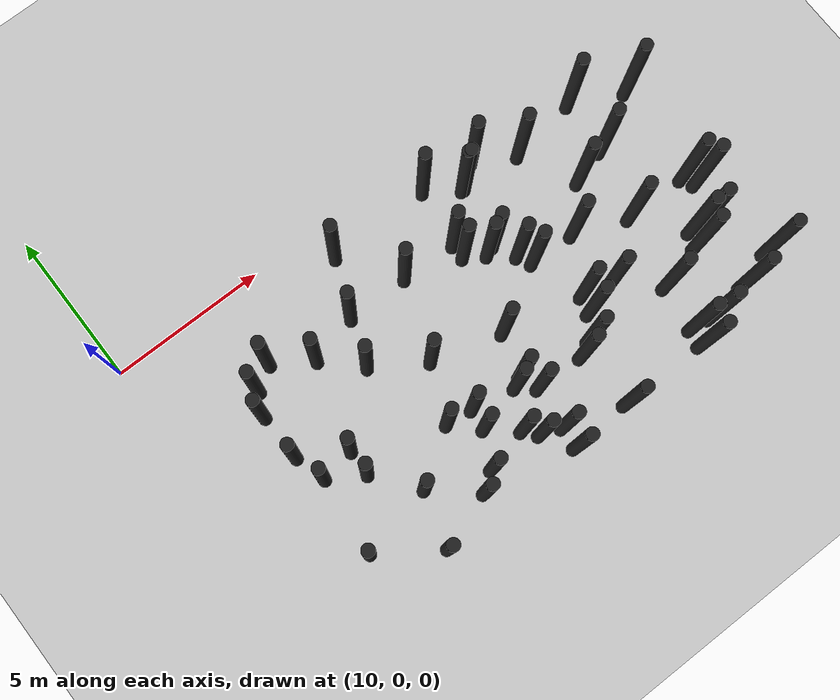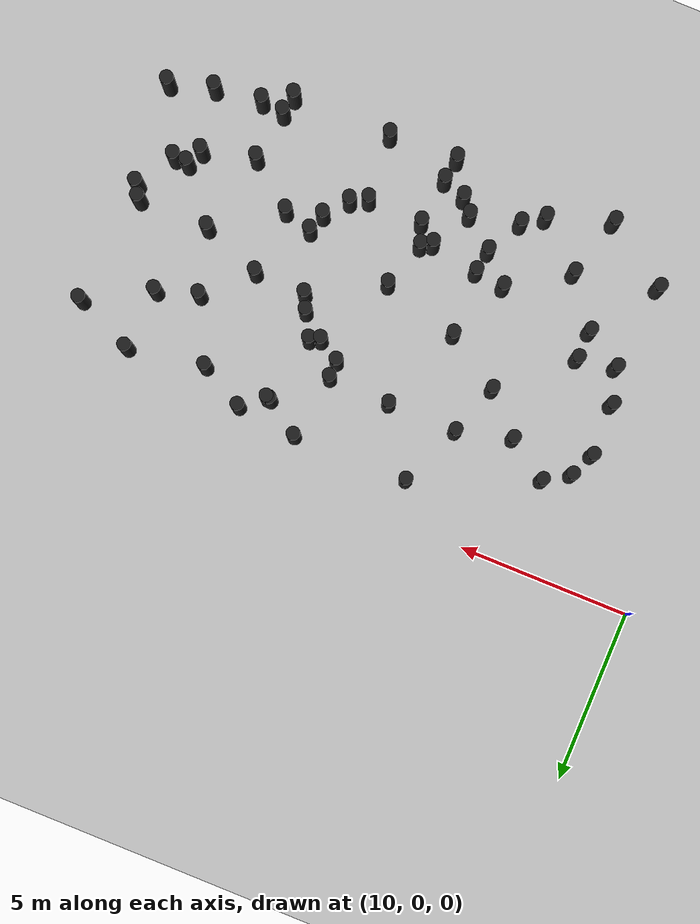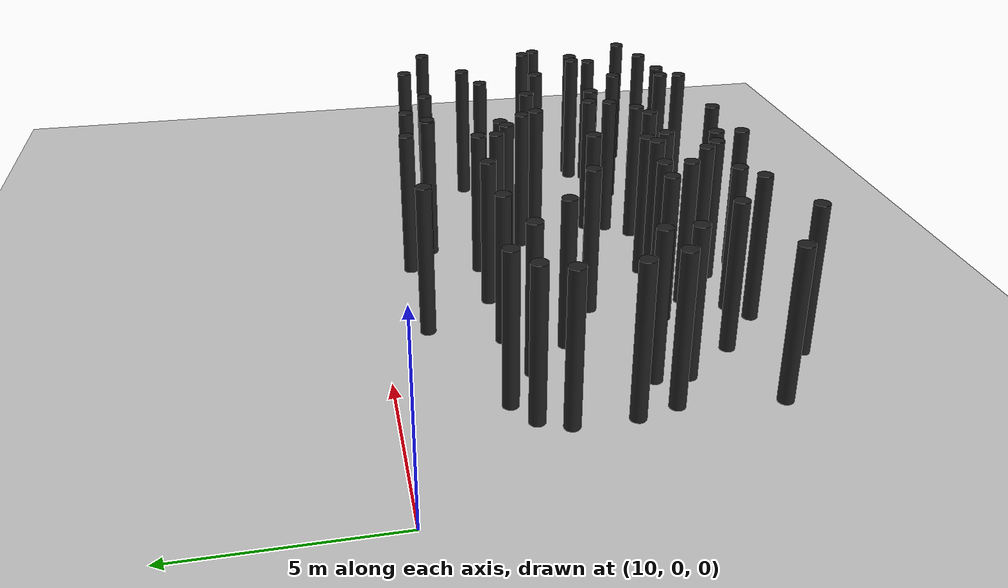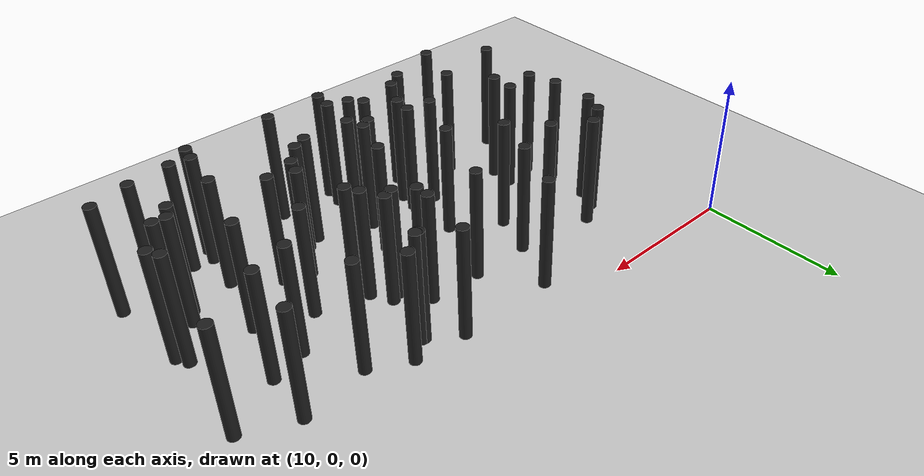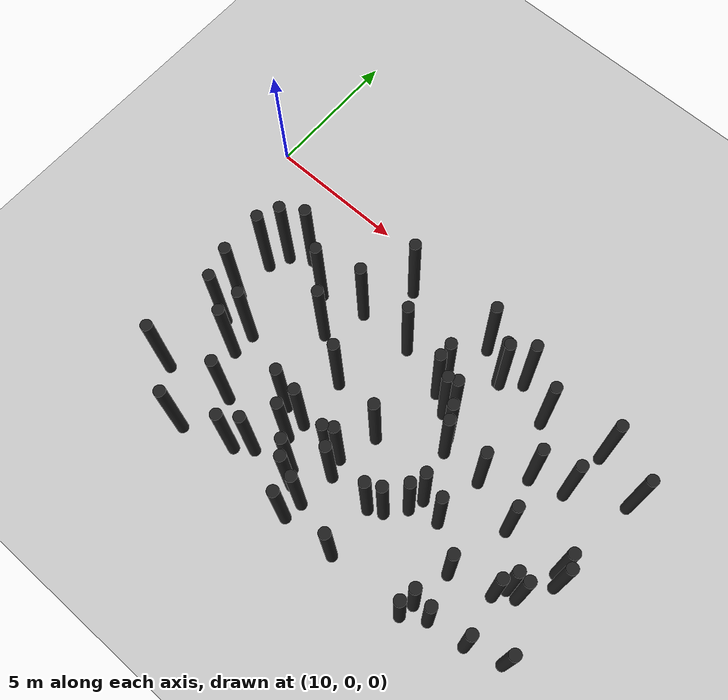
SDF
<sdf version="1.7">
 <world name="default">
  <model name="ground_plane">
   <static>1</static>
   <link name="link">
    <collision name="collision">
     <geometry><plane><normal>0 0 1</normal><size>200 200</size></plane></geometry>
     <surface><friction><ode><mu>100</mu><mu2>50</mu2></ode></friction></surface>
    </collision>
    <visual name="visual">
     <cast_shadows>0</cast_shadows>
     <geometry><plane><normal>0 0 1</normal><size>200 200</size></plane></geometry>
     <material>
      <script><uri>file://media/materials/scripts/gazebo.material</uri><name>Gazebo/Grey</name></script>
     </material>
    </visual>
   </link>
  </model>
  <model name="forest_clone_17_0">
   <pose>18.3084 -8.63581 0.00226 0 -0 0</pose>
   <static>1</static>
   <link name="cylinder::link">
    <inertial>
     <mass>1</mass>
     <inertia><ixx>0.083</ixx><ixy>0</ixy><ixz>0</ixz><iyy>0.083</iyy><iyz>0</iyz><izz>0.083</izz></inertia>
    </inertial>
    <collision name="collision">
     <geometry><cylinder><radius>0.2</radius><length>4</length></cylinder></geometry>
    </collision>
    <visual name="visual">
     <geometry><cylinder><radius>0.2</radius><length>4</length></cylinder></geometry>
     <material>
      <script><uri>file://media/materials/scripts/gazebo.material</uri><name>Gazebo/Black</name></script>
     </material>
    </visual>
    <pose>0 0 2 0 -0 0</pose>
   </link>
  </model>
  <model name="forest_clone_20_0">
   <pose>17.5492 -7.24611 0.00177 0 -0 0</pose>
   <static>1</static>
   <link name="cylinder::link">
    <inertial>
     <mass>1</mass>
     <inertia><ixx>0.083</ixx><ixy>0</ixy><ixz>0</ixz><iyy>0.083</iyy><iyz>0</iyz><izz>0.083</izz></inertia>
    </inertial>
    <collision name="collision">
     <geometry><cylinder><radius>0.2</radius><length>4</length></cylinder></geometry>
    </collision>
    <visual name="visual">
     <geometry><cylinder><radius>0.2</radius><length>4</length></cylinder></geometry>
     <material>
      <script><uri>file://media/materials/scripts/gazebo.material</uri><name>Gazebo/Black</name></script>
     </material>
    </visual>
    <pose>0 0 2 0 -0 0</pose>
   </link>
  </model>
  <model name="forest_clone_25_0">
   <pose>21.1492 -3.74001 -0.00472 0 -0 0</pose>
   <static>1</static>
   <link name="cylinder::link">
    <inertial>
     <mass>1</mass>
     <inertia><ixx>0.083</ixx><ixy>0</ixy><ixz>0</ixz><iyy>0.083</iyy><iyz>0</iyz><izz>0.083</izz></inertia>
    </inertial>
    <collision name="collision">
     <geometry><cylinder><radius>0.2</radius><length>4</length></cylinder></geometry>
    </collision>
    <visual name="visual">
     <geometry><cylinder><radius>0.2</radius><length>4</length></cylinder></geometry>
     <material>
      <script><uri>file://media/materials/scripts/gazebo.material</uri><name>Gazebo/Black</name></script>
     </material>
    </visual>
    <pose>0 0 2 0 -0 0</pose>
   </link>
  </model>
  <model name="forest_clone_57_0">
   <pose>24.2118 -9.33026 0.00323 0 -0 0</pose>
   <static>1</static>
   <link name="cylinder::link">
    <inertial>
     <mass>1</mass>
     <inertia><ixx>0.083</ixx><ixy>0</ixy><ixz>0</ixz><iyy>0.083</iyy><iyz>0</iyz><izz>0.083</izz></inertia>
    </inertial>
    <collision name="collision">
     <geometry><cylinder><radius>0.2</radius><length>4</length></cylinder></geometry>
    </collision>
    <visual name="visual">
     <geometry><cylinder><radius>0.2</radius><length>4</length></cylinder></geometry>
     <material>
      <script><uri>file://media/materials/scripts/gazebo.material</uri><name>Gazebo/Black</name></script>
     </material>
    </visual>
    <pose>0 0 2 0 -0 0</pose>
   </link>
  </model>
  <model name="forest_clone_60_0">
   <pose>15.0051 -8.24559 0.00264 0 -0 0</pose>
   <static>1</static>
   <link name="cylinder::link">
    <inertial>
     <mass>1</mass>
     <inertia><ixx>0.083</ixx><ixy>0</ixy><ixz>0</ixz><iyy>0.083</iyy><iyz>0</iyz><izz>0.083</izz></inertia>
    </inertial>
    <collision name="collision">
     <geometry><cylinder><radius>0.2</radius><length>4</length></cylinder></geometry>
    </collision>
    <visual name="visual">
     <geometry><cylinder><radius>0.2</radius><length>4</length></cylinder></geometry>
     <material>
      <script><uri>file://media/materials/scripts/gazebo.material</uri><name>Gazebo/Black</name></script>
     </material>
    </visual>
    <pose>0 0 2 0 -0 0</pose>
   </link>
  </model>
  <model name="forest_clone_64_0">
   <pose>16.3155 -9.3791 -0.00148 0 -0 0</pose>
   <static>1</static>
   <link name="cylinder::link">
    <inertial>
     <mass>1</mass>
     <inertia><ixx>0.083</ixx><ixy>0</ixy><ixz>0</ixz><iyy>0.083</iyy><iyz>0</iyz><izz>0.083</izz></inertia>
    </inertial>
    <collision name="collision">
     <geometry><cylinder><radius>0.2</radius><length>4</length></cylinder></geometry>
    </collision>
    <visual name="visual">
     <geometry><cylinder><radius>0.2</radius><length>4</length></cylinder></geometry>
     <material>
      <script><uri>file://media/materials/scripts/gazebo.material</uri><name>Gazebo/Black</name></script>
     </material>
    </visual>
    <pose>0 0 2 0 -0 0</pose>
   </link>
  </model>
  <model name="forest_clone_70_0">
   <pose>21.746 -4.87308 0.00203 0 -0 0</pose>
   <static>1</static>
   <link name="cylinder::link">
    <inertial>
     <mass>1</mass>
     <inertia><ixx>0.083</ixx><ixy>0</ixy><ixz>0</ixz><iyy>0.083</iyy><iyz>0</iyz><izz>0.083</izz></inertia>
    </inertial>
    <collision name="collision">
     <geometry><cylinder><radius>0.2</radius><length>4</length></cylinder></geometry>
    </collision>
    <visual name="visual">
     <geometry><cylinder><radius>0.2</radius><length>4</length></cylinder></geometry>
     <material>
      <script><uri>file://media/materials/scripts/gazebo.material</uri><name>Gazebo/Black</name></script>
     </material>
    </visual>
    <pose>0 0 2 0 -0 0</pose>
   </link>
  </model>
  <model name="forest_clone_74_0">
   <pose>12.9432 -3.00263 -0.00263 0 -0 0</pose>
   <static>1</static>
   <link name="cylinder::link">
    <inertial>
     <mass>1</mass>
     <inertia><ixx>0.083</ixx><ixy>0</ixy><ixz>0</ixz><iyy>0.083</iyy><iyz>0</iyz><izz>0.083</izz></inertia>
    </inertial>
    <collision name="collision">
     <geometry><cylinder><radius>0.2</radius><length>4</length></cylinder></geometry>
    </collision>
    <visual name="visual">
     <geometry><cylinder><radius>0.2</radius><length>4</length></cylinder></geometry>
     <material>
      <script><uri>file://media/materials/scripts/gazebo.material</uri><name>Gazebo/Black</name></script>
     </material>
    </visual>
    <pose>0 0 2 0 -0 0</pose>
   </link>
  </model>
  <model name="forest_clone_86_0">
   <pose>24.4508 -3.74192 -0.00188 0 -0 0</pose>
   <static>1</static>
   <link name="cylinder::link">
    <inertial>
     <mass>1</mass>
     <inertia><ixx>0.083</ixx><ixy>0</ixy><ixz>0</ixz><iyy>0.083</iyy><iyz>0</iyz><izz>0.083</izz></inertia>
    </inertial>
    <collision name="collision">
     <geometry><cylinder><radius>0.2</radius><length>4</length></cylinder></geometry>
    </collision>
    <visual name="visual">
     <geometry><cylinder><radius>0.2</radius><length>4</length></cylinder></geometry>
     <material>
      <script><uri>file://media/materials/scripts/gazebo.material</uri><name>Gazebo/Black</name></script>
     </material>
    </visual>
    <pose>0 0 2 0 -0 0</pose>
   </link>
  </model>
  <model name="forest_clone_87_0">
   <pose>18.6544 -9.04217 0.00056 0 -0 0</pose>
   <static>1</static>
   <link name="cylinder::link">
    <inertial>
     <mass>1</mass>
     <inertia><ixx>0.083</ixx><ixy>0</ixy><ixz>0</ixz><iyy>0.083</iyy><iyz>0</iyz><izz>0.083</izz></inertia>
    </inertial>
    <collision name="collision">
     <geometry><cylinder><radius>0.2</radius><length>4</length></cylinder></geometry>
    </collision>
    <visual name="visual">
     <geometry><cylinder><radius>0.2</radius><length>4</length></cylinder></geometry>
     <material>
      <script><uri>file://media/materials/scripts/gazebo.material</uri><name>Gazebo/Black</name></script>
     </material>
    </visual>
    <pose>0 0 2 0 -0 0</pose>
   </link>
  </model>
  <model name="forest_clone_90_0">
   <pose>19.3207 -9.28563 -0.00075 0 -0 0</pose>
   <static>1</static>
   <link name="cylinder::link">
    <inertial>
     <mass>1</mass>
     <inertia><ixx>0.083</ixx><ixy>0</ixy><ixz>0</ixz><iyy>0.083</iyy><iyz>0</iyz><izz>0.083</izz></inertia>
    </inertial>
    <collision name="collision">
     <geometry><cylinder><radius>0.2</radius><length>4</length></cylinder></geometry>
    </collision>
    <visual name="visual">
     <geometry><cylinder><radius>0.2</radius><length>4</length></cylinder></geometry>
     <material>
      <script><uri>file://media/materials/scripts/gazebo.material</uri><name>Gazebo/Black</name></script>
     </material>
    </visual>
    <pose>0 0 2 0 -0 0</pose>
   </link>
  </model>
  <model name="forest_clone_106_0">
   <pose>25.9196 -7.48593 0.00147 0 -0 0</pose>
   <static>1</static>
   <link name="cylinder::link">
    <inertial>
     <mass>1</mass>
     <inertia><ixx>0.083</ixx><ixy>0</ixy><ixz>0</ixz><iyy>0.083</iyy><iyz>0</iyz><izz>0.083</izz></inertia>
    </inertial>
    <collision name="collision">
     <geometry><cylinder><radius>0.2</radius><length>4</length></cylinder></geometry>
    </collision>
    <visual name="visual">
     <geometry><cylinder><radius>0.2</radius><length>4</length></cylinder></geometry>
     <material>
      <script><uri>file://media/materials/scripts/gazebo.material</uri><name>Gazebo/Black</name></script>
     </material>
    </visual>
    <pose>0 0 2 0 -0 0</pose>
   </link>
  </model>
  <model name="forest_clone_116_0">
   <pose>20.2142 -2.96895 -0.00161 0 -0 0</pose>
   <static>1</static>
   <link name="cylinder::link">
    <inertial>
     <mass>1</mass>
     <inertia><ixx>0.083</ixx><ixy>0</ixy><ixz>0</ixz><iyy>0.083</iyy><iyz>0</iyz><izz>0.083</izz></inertia>
    </inertial>
    <collision name="collision">
     <geometry><cylinder><radius>0.2</radius><length>4</length></cylinder></geometry>
    </collision>
    <visual name="visual">
     <geometry><cylinder><radius>0.2</radius><length>4</length></cylinder></geometry>
     <material>
      <script><uri>file://media/materials/scripts/gazebo.material</uri><name>Gazebo/Black</name></script>
     </material>
    </visual>
    <pose>0 0 2 0 -0 0</pose>
   </link>
  </model>
  <model name="forest_clone_123_0">
   <pose>21.5229 -1.77766 0.0012 0 -0 0</pose>
   <static>1</static>
   <link name="cylinder::link">
    <inertial>
     <mass>1</mass>
     <inertia><ixx>0.083</ixx><ixy>0</ixy><ixz>0</ixz><iyy>0.083</iyy><iyz>0</iyz><izz>0.083</izz></inertia>
    </inertial>
    <collision name="collision">
     <geometry><cylinder><radius>0.2</radius><length>4</length></cylinder></geometry>
    </collision>
    <visual name="visual">
     <geometry><cylinder><radius>0.2</radius><length>4</length></cylinder></geometry>
     <material>
      <script><uri>file://media/materials/scripts/gazebo.material</uri><name>Gazebo/Black</name></script>
     </material>
    </visual>
    <pose>0 0 2 0 -0 0</pose>
   </link>
  </model>
  <model name="forest_clone_127_0">
   <pose>24.1037 -9.87861 0.00229 0 -0 0</pose>
   <static>1</static>
   <link name="cylinder::link">
    <inertial>
     <mass>1</mass>
     <inertia><ixx>0.083</ixx><ixy>0</ixy><ixz>0</ixz><iyy>0.083</iyy><iyz>0</iyz><izz>0.083</izz></inertia>
    </inertial>
    <collision name="collision">
     <geometry><cylinder><radius>0.2</radius><length>4</length></cylinder></geometry>
    </collision>
    <visual name="visual">
     <geometry><cylinder><radius>0.2</radius><length>4</length></cylinder></geometry>
     <material>
      <script><uri>file://media/materials/scripts/gazebo.material</uri><name>Gazebo/Black</name></script>
     </material>
    </visual>
    <pose>0 0 2 0 -0 0</pose>
   </link>
  </model>
  <model name="forest_clone_140_0">
   <pose>19.269 -7.33787 -0.00301 0 -0 0</pose>
   <static>1</static>
   <link name="cylinder::link">
    <inertial>
     <mass>1</mass>
     <inertia><ixx>0.083</ixx><ixy>0</ixy><ixz>0</ixz><iyy>0.083</iyy><iyz>0</iyz><izz>0.083</izz></inertia>
    </inertial>
    <collision name="collision">
     <geometry><cylinder><radius>0.2</radius><length>4</length></cylinder></geometry>
    </collision>
    <visual name="visual">
     <geometry><cylinder><radius>0.2</radius><length>4</length></cylinder></geometry>
     <material>
      <script><uri>file://media/materials/scripts/gazebo.material</uri><name>Gazebo/Black</name></script>
     </material>
    </visual>
    <pose>0 0 2 0 -0 0</pose>
   </link>
  </model>
  <model name="forest_clone_141_0">
   <pose>22.1048 -7.10835 -0.00461 0 -0 0</pose>
   <static>1</static>
   <link name="cylinder::link">
    <inertial>
     <mass>1</mass>
     <inertia><ixx>0.083</ixx><ixy>0</ixy><ixz>0</ixz><iyy>0.083</iyy><iyz>0</iyz><izz>0.083</izz></inertia>
    </inertial>
    <collision name="collision">
     <geometry><cylinder><radius>0.2</radius><length>4</length></cylinder></geometry>
    </collision>
    <visual name="visual">
     <geometry><cylinder><radius>0.2</radius><length>4</length></cylinder></geometry>
     <material>
      <script><uri>file://media/materials/scripts/gazebo.material</uri><name>Gazebo/Black</name></script>
     </material>
    </visual>
    <pose>0 0 2 0 -0 0</pose>
   </link>
  </model>
  <model name="forest_clone_3_clone">
   <pose>25.7862 -1.61485 0.00023 0 -0 0</pose>
   <static>1</static>
   <link name="cylinder::link">
    <inertial>
     <mass>1</mass>
     <inertia><ixx>0.083</ixx><ixy>0</ixy><ixz>0</ixz><iyy>0.083</iyy><iyz>0</iyz><izz>0.083</izz></inertia>
    </inertial>
    <collision name="collision">
     <geometry><cylinder><radius>0.2</radius><length>4</length></cylinder></geometry>
    </collision>
    <visual name="visual">
     <geometry><cylinder><radius>0.2</radius><length>4</length></cylinder></geometry>
     <material>
      <script><uri>file://media/materials/scripts/gazebo.material</uri><name>Gazebo/Black</name></script>
     </material>
    </visual>
    <pose>0 0 2 0 -0 0</pose>
   </link>
  </model>
  <model name="forest_clone_13_1">
   <pose>26.5601 -7.04615 -0.00473 0 -0 0</pose>
   <static>1</static>
   <link name="cylinder::link">
    <inertial>
     <mass>1</mass>
     <inertia><ixx>0.083</ixx><ixy>0</ixy><ixz>0</ixz><iyy>0.083</iyy><iyz>0</iyz><izz>0.083</izz></inertia>
    </inertial>
    <collision name="collision">
     <geometry><cylinder><radius>0.2</radius><length>4</length></cylinder></geometry>
    </collision>
    <visual name="visual">
     <geometry><cylinder><radius>0.2</radius><length>4</length></cylinder></geometry>
     <material>
      <script><uri>file://media/materials/scripts/gazebo.material</uri><name>Gazebo/Black</name></script>
     </material>
    </visual>
    <pose>0 0 2 0 -0 0</pose>
   </link>
  </model>
  <model name="forest_clone_17_1">
   <pose>24.8782 -9.42063 0.00179 0 -0 0</pose>
   <static>1</static>
   <link name="cylinder::link">
    <inertial>
     <mass>1</mass>
     <inertia><ixx>0.083</ixx><ixy>0</ixy><ixz>0</ixz><iyy>0.083</iyy><iyz>0</iyz><izz>0.083</izz></inertia>
    </inertial>
    <collision name="collision">
     <geometry><cylinder><radius>0.2</radius><length>4</length></cylinder></geometry>
    </collision>
    <visual name="visual">
     <geometry><cylinder><radius>0.2</radius><length>4</length></cylinder></geometry>
     <material>
      <script><uri>file://media/materials/scripts/gazebo.material</uri><name>Gazebo/Black</name></script>
     </material>
    </visual>
    <pose>0 0 2 0 -0 0</pose>
   </link>
  </model>
  <model name="forest_clone_18_1">
   <pose>12.9191 -6.23959 -0.00264 0 -0 0</pose>
   <static>1</static>
   <link name="cylinder::link">
    <inertial>
     <mass>1</mass>
     <inertia><ixx>0.083</ixx><ixy>0</ixy><ixz>0</ixz><iyy>0.083</iyy><iyz>0</iyz><izz>0.083</izz></inertia>
    </inertial>
    <collision name="collision">
     <geometry><cylinder><radius>0.2</radius><length>4</length></cylinder></geometry>
    </collision>
    <visual name="visual">
     <geometry><cylinder><radius>0.2</radius><length>4</length></cylinder></geometry>
     <material>
      <script><uri>file://media/materials/scripts/gazebo.material</uri><name>Gazebo/Black</name></script>
     </material>
    </visual>
    <pose>0 0 2 0 -0 0</pose>
   </link>
  </model>
  <model name="forest_clone_20_1">
   <pose>27.2466 -5.96521 0.00302 0 -0 0</pose>
   <static>1</static>
   <link name="cylinder::link">
    <inertial>
     <mass>1</mass>
     <inertia><ixx>0.083</ixx><ixy>0</ixy><ixz>0</ixz><iyy>0.083</iyy><iyz>0</iyz><izz>0.083</izz></inertia>
    </inertial>
    <collision name="collision">
     <geometry><cylinder><radius>0.2</radius><length>4</length></cylinder></geometry>
    </collision>
    <visual name="visual">
     <geometry><cylinder><radius>0.2</radius><length>4</length></cylinder></geometry>
     <material>
      <script><uri>file://media/materials/scripts/gazebo.material</uri><name>Gazebo/Black</name></script>
     </material>
    </visual>
    <pose>0 0 2 0 -0 0</pose>
   </link>
  </model>
  <model name="forest_clone_34_1">
   <pose>19.6945 -6.00262 -0.00474 0 -0 0</pose>
   <static>1</static>
   <link name="cylinder::link">
    <inertial>
     <mass>1</mass>
     <inertia><ixx>0.083</ixx><ixy>0</ixy><ixz>0</ixz><iyy>0.083</iyy><iyz>0</iyz><izz>0.083</izz></inertia>
    </inertial>
    <collision name="collision">
     <geometry><cylinder><radius>0.2</radius><length>4</length></cylinder></geometry>
    </collision>
    <visual name="visual">
     <geometry><cylinder><radius>0.2</radius><length>4</length></cylinder></geometry>
     <material>
      <script><uri>file://media/materials/scripts/gazebo.material</uri><name>Gazebo/Black</name></script>
     </material>
    </visual>
    <pose>0 0 2 0 -0 0</pose>
   </link>
  </model>
  <model name="forest_clone_42_1">
   <pose>25.6295 -3.3852 0.0029 0 -0 0</pose>
   <static>1</static>
   <link name="cylinder::link">
    <inertial>
     <mass>1</mass>
     <inertia><ixx>0.083</ixx><ixy>0</ixy><ixz>0</ixz><iyy>0.083</iyy><iyz>0</iyz><izz>0.083</izz></inertia>
    </inertial>
    <collision name="collision">
     <geometry><cylinder><radius>0.2</radius><length>4</length></cylinder></geometry>
    </collision>
    <visual name="visual">
     <geometry><cylinder><radius>0.2</radius><length>4</length></cylinder></geometry>
     <material>
      <script><uri>file://media/materials/scripts/gazebo.material</uri><name>Gazebo/Black</name></script>
     </material>
    </visual>
    <pose>0 0 2 0 -0 0</pose>
   </link>
  </model>
  <model name="forest_clone_43_1">
   <pose>19.4777 -7.94407 0.00326 0 -0 0</pose>
   <static>1</static>
   <link name="cylinder::link">
    <inertial>
     <mass>1</mass>
     <inertia><ixx>0.083</ixx><ixy>0</ixy><ixz>0</ixz><iyy>0.083</iyy><iyz>0</iyz><izz>0.083</izz></inertia>
    </inertial>
    <collision name="collision">
     <geometry><cylinder><radius>0.2</radius><length>4</length></cylinder></geometry>
    </collision>
    <visual name="visual">
     <geometry><cylinder><radius>0.2</radius><length>4</length></cylinder></geometry>
     <material>
      <script><uri>file://media/materials/scripts/gazebo.material</uri><name>Gazebo/Black</name></script>
     </material>
    </visual>
    <pose>0 0 2 0 -0 0</pose>
   </link>
  </model>
  <model name="forest_clone_48_1">
   <pose>19.2299 -9.96028 0.00413 0 -0 0</pose>
   <static>1</static>
   <link name="cylinder::link">
    <inertial>
     <mass>1</mass>
     <inertia><ixx>0.083</ixx><ixy>0</ixy><ixz>0</ixz><iyy>0.083</iyy><iyz>0</iyz><izz>0.083</izz></inertia>
    </inertial>
    <collision name="collision">
     <geometry><cylinder><radius>0.2</radius><length>4</length></cylinder></geometry>
    </collision>
    <visual name="visual">
     <geometry><cylinder><radius>0.2</radius><length>4</length></cylinder></geometry>
     <material>
      <script><uri>file://media/materials/scripts/gazebo.material</uri><name>Gazebo/Black</name></script>
     </material>
    </visual>
    <pose>0 0 2 0 -0 0</pose>
   </link>
  </model>
  <model name="forest_clone_53_1">
   <pose>12.6622 -8.73876 0.00105 0 -0 0</pose>
   <static>1</static>
   <link name="cylinder::link">
    <inertial>
     <mass>1</mass>
     <inertia><ixx>0.083</ixx><ixy>0</ixy><ixz>0</ixz><iyy>0.083</iyy><iyz>0</iyz><izz>0.083</izz></inertia>
    </inertial>
    <collision name="collision">
     <geometry><cylinder><radius>0.2</radius><length>4</length></cylinder></geometry>
    </collision>
    <visual name="visual">
     <geometry><cylinder><radius>0.2</radius><length>4</length></cylinder></geometry>
     <material>
      <script><uri>file://media/materials/scripts/gazebo.material</uri><name>Gazebo/Black</name></script>
     </material>
    </visual>
    <pose>0 0 2 0 -0 0</pose>
   </link>
  </model>
  <model name="forest_clone_54_1">
   <pose>21.2106 -9.87478 -0.0009 0 -0 0</pose>
   <static>1</static>
   <link name="cylinder::link">
    <inertial>
     <mass>1</mass>
     <inertia><ixx>0.083</ixx><ixy>0</ixy><ixz>0</ixz><iyy>0.083</iyy><iyz>0</iyz><izz>0.083</izz></inertia>
    </inertial>
    <collision name="collision">
     <geometry><cylinder><radius>0.2</radius><length>4</length></cylinder></geometry>
    </collision>
    <visual name="visual">
     <geometry><cylinder><radius>0.2</radius><length>4</length></cylinder></geometry>
     <material>
      <script><uri>file://media/materials/scripts/gazebo.material</uri><name>Gazebo/Black</name></script>
     </material>
    </visual>
    <pose>0 0 2 0 -0 0</pose>
   </link>
  </model>
  <model name="forest_clone_59_1">
   <pose>14.8339 -3.31864 0.00444 0 -0 0</pose>
   <static>1</static>
   <link name="cylinder::link">
    <inertial>
     <mass>1</mass>
     <inertia><ixx>0.083</ixx><ixy>0</ixy><ixz>0</ixz><iyy>0.083</iyy><iyz>0</iyz><izz>0.083</izz></inertia>
    </inertial>
    <collision name="collision">
     <geometry><cylinder><radius>0.2</radius><length>4</length></cylinder></geometry>
    </collision>
    <visual name="visual">
     <geometry><cylinder><radius>0.2</radius><length>4</length></cylinder></geometry>
     <material>
      <script><uri>file://media/materials/scripts/gazebo.material</uri><name>Gazebo/Black</name></script>
     </material>
    </visual>
    <pose>0 0 2 0 -0 0</pose>
   </link>
  </model>
  <model name="forest_clone_62_1">
   <pose>16.6915 -7.14638 -0.00113 0 -0 0</pose>
   <static>1</static>
   <link name="cylinder::link">
    <inertial>
     <mass>1</mass>
     <inertia><ixx>0.083</ixx><ixy>0</ixy><ixz>0</ixz><iyy>0.083</iyy><iyz>0</iyz><izz>0.083</izz></inertia>
    </inertial>
    <collision name="collision">
     <geometry><cylinder><radius>0.2</radius><length>4</length></cylinder></geometry>
    </collision>
    <visual name="visual">
     <geometry><cylinder><radius>0.2</radius><length>4</length></cylinder></geometry>
     <material>
      <script><uri>file://media/materials/scripts/gazebo.material</uri><name>Gazebo/Black</name></script>
     </material>
    </visual>
    <pose>0 0 2 0 -0 0</pose>
   </link>
  </model>
  <model name="forest_clone_72_1">
   <pose>18.416 -2.91543 -0.00218 0 -0 0</pose>
   <static>1</static>
   <link name="cylinder::link">
    <inertial>
     <mass>1</mass>
     <inertia><ixx>0.083</ixx><ixy>0</ixy><ixz>0</ixz><iyy>0.083</iyy><iyz>0</iyz><izz>0.083</izz></inertia>
    </inertial>
    <collision name="collision">
     <geometry><cylinder><radius>0.2</radius><length>4</length></cylinder></geometry>
    </collision>
    <visual name="visual">
     <geometry><cylinder><radius>0.2</radius><length>4</length></cylinder></geometry>
     <material>
      <script><uri>file://media/materials/scripts/gazebo.material</uri><name>Gazebo/Black</name></script>
     </material>
    </visual>
    <pose>0 0 2 0 -0 0</pose>
   </link>
  </model>
  <model name="forest_clone_99_1">
   <pose>21.5296 -4.43023 0.00406 0 -0 0</pose>
   <static>1</static>
   <link name="cylinder::link">
    <inertial>
     <mass>1</mass>
     <inertia><ixx>0.083</ixx><ixy>0</ixy><ixz>0</ixz><iyy>0.083</iyy><iyz>0</iyz><izz>0.083</izz></inertia>
    </inertial>
    <collision name="collision">
     <geometry><cylinder><radius>0.2</radius><length>4</length></cylinder></geometry>
    </collision>
    <visual name="visual">
     <geometry><cylinder><radius>0.2</radius><length>4</length></cylinder></geometry>
     <material>
      <script><uri>file://media/materials/scripts/gazebo.material</uri><name>Gazebo/Black</name></script>
     </material>
    </visual>
    <pose>0 0 2 0 -0 0</pose>
   </link>
  </model>
  <model name="forest_clone_102_1">
   <pose>13.6558 -2.54594 0.00456 0 -0 0</pose>
   <static>1</static>
   <link name="cylinder::link">
    <inertial>
     <mass>1</mass>
     <inertia><ixx>0.083</ixx><ixy>0</ixy><ixz>0</ixz><iyy>0.083</iyy><iyz>0</iyz><izz>0.083</izz></inertia>
    </inertial>
    <collision name="collision">
     <geometry><cylinder><radius>0.2</radius><length>4</length></cylinder></geometry>
    </collision>
    <visual name="visual">
     <geometry><cylinder><radius>0.2</radius><length>4</length></cylinder></geometry>
     <material>
      <script><uri>file://media/materials/scripts/gazebo.material</uri><name>Gazebo/Black</name></script>
     </material>
    </visual>
    <pose>0 0 2 0 -0 0</pose>
   </link>
  </model>
  <model name="forest_clone_107_1">
   <pose>21.0787 -7.98689 -0.005 0 -0 0</pose>
   <static>1</static>
   <link name="cylinder::link">
    <inertial>
     <mass>1</mass>
     <inertia><ixx>0.083</ixx><ixy>0</ixy><ixz>0</ixz><iyy>0.083</iyy><iyz>0</iyz><izz>0.083</izz></inertia>
    </inertial>
    <collision name="collision">
     <geometry><cylinder><radius>0.2</radius><length>4</length></cylinder></geometry>
    </collision>
    <visual name="visual">
     <geometry><cylinder><radius>0.2</radius><length>4</length></cylinder></geometry>
     <material>
      <script><uri>file://media/materials/scripts/gazebo.material</uri><name>Gazebo/Black</name></script>
     </material>
    </visual>
    <pose>0 0 2 0 -0 0</pose>
   </link>
  </model>
  <model name="forest_clone_109_1">
   <pose>22.2762 -6.56702 -0.00251 0 -0 0</pose>
   <static>1</static>
   <link name="cylinder::link">
    <inertial>
     <mass>1</mass>
     <inertia><ixx>0.083</ixx><ixy>0</ixy><ixz>0</ixz><iyy>0.083</iyy><iyz>0</iyz><izz>0.083</izz></inertia>
    </inertial>
    <collision name="collision">
     <geometry><cylinder><radius>0.2</radius><length>4</length></cylinder></geometry>
    </collision>
    <visual name="visual">
     <geometry><cylinder><radius>0.2</radius><length>4</length></cylinder></geometry>
     <material>
      <script><uri>file://media/materials/scripts/gazebo.material</uri><name>Gazebo/Black</name></script>
     </material>
    </visual>
    <pose>0 0 2 0 -0 0</pose>
   </link>
  </model>
  <model name="forest_clone_111_1">
   <pose>26.2394 -9.26077 -0.00431 0 -0 0</pose>
   <static>1</static>
   <link name="cylinder::link">
    <inertial>
     <mass>1</mass>
     <inertia><ixx>0.083</ixx><ixy>0</ixy><ixz>0</ixz><iyy>0.083</iyy><iyz>0</iyz><izz>0.083</izz></inertia>
    </inertial>
    <collision name="collision">
     <geometry><cylinder><radius>0.2</radius><length>4</length></cylinder></geometry>
    </collision>
    <visual name="visual">
     <geometry><cylinder><radius>0.2</radius><length>4</length></cylinder></geometry>
     <material>
      <script><uri>file://media/materials/scripts/gazebo.material</uri><name>Gazebo/Black</name></script>
     </material>
    </visual>
    <pose>0 0 2 0 -0 0</pose>
   </link>
  </model>
  <model name="forest_clone_121_1">
   <pose>24.4182 -7.87868 -0.00144 0 -0 0</pose>
   <static>1</static>
   <link name="cylinder::link">
    <inertial>
     <mass>1</mass>
     <inertia><ixx>0.083</ixx><ixy>0</ixy><ixz>0</ixz><iyy>0.083</iyy><iyz>0</iyz><izz>0.083</izz></inertia>
    </inertial>
    <collision name="collision">
     <geometry><cylinder><radius>0.2</radius><length>4</length></cylinder></geometry>
    </collision>
    <visual name="visual">
     <geometry><cylinder><radius>0.2</radius><length>4</length></cylinder></geometry>
     <material>
      <script><uri>file://media/materials/scripts/gazebo.material</uri><name>Gazebo/Black</name></script>
     </material>
    </visual>
    <pose>0 0 2 0 -0 0</pose>
   </link>
  </model>
  <model name="forest_clone_125_1">
   <pose>17.4584 -7.9128 -0.00175 0 -0 0</pose>
   <static>1</static>
   <link name="cylinder::link">
    <inertial>
     <mass>1</mass>
     <inertia><ixx>0.083</ixx><ixy>0</ixy><ixz>0</ixz><iyy>0.083</iyy><iyz>0</iyz><izz>0.083</izz></inertia>
    </inertial>
    <collision name="collision">
     <geometry><cylinder><radius>0.2</radius><length>4</length></cylinder></geometry>
    </collision>
    <visual name="visual">
     <geometry><cylinder><radius>0.2</radius><length>4</length></cylinder></geometry>
     <material>
      <script><uri>file://media/materials/scripts/gazebo.material</uri><name>Gazebo/Black</name></script>
     </material>
    </visual>
    <pose>0 0 2 0 -0 0</pose>
   </link>
  </model>
  <model name="forest_clone_128_1">
   <pose>21.6163 -1.78795 0.00227 0 -0 0</pose>
   <static>1</static>
   <link name="cylinder::link">
    <inertial>
     <mass>1</mass>
     <inertia><ixx>0.083</ixx><ixy>0</ixy><ixz>0</ixz><iyy>0.083</iyy><iyz>0</iyz><izz>0.083</izz></inertia>
    </inertial>
    <collision name="collision">
     <geometry><cylinder><radius>0.2</radius><length>4</length></cylinder></geometry>
    </collision>
    <visual name="visual">
     <geometry><cylinder><radius>0.2</radius><length>4</length></cylinder></geometry>
     <material>
      <script><uri>file://media/materials/scripts/gazebo.material</uri><name>Gazebo/Black</name></script>
     </material>
    </visual>
    <pose>0 0 2 0 -0 0</pose>
   </link>
  </model>
  <model name="forest_clone_129_1">
   <pose>27.0314 -5.58481 0.00238 0 -0 0</pose>
   <static>1</static>
   <link name="cylinder::link">
    <inertial>
     <mass>1</mass>
     <inertia><ixx>0.083</ixx><ixy>0</ixy><ixz>0</ixz><iyy>0.083</iyy><iyz>0</iyz><izz>0.083</izz></inertia>
    </inertial>
    <collision name="collision">
     <geometry><cylinder><radius>0.2</radius><length>4</length></cylinder></geometry>
    </collision>
    <visual name="visual">
     <geometry><cylinder><radius>0.2</radius><length>4</length></cylinder></geometry>
     <material>
      <script><uri>file://media/materials/scripts/gazebo.material</uri><name>Gazebo/Black</name></script>
     </material>
    </visual>
    <pose>0 0 2 0 -0 0</pose>
   </link>
  </model>
  <model name="forest_clone_131_1">
   <pose>14.5105 -9.98176 0.00265 0 -0 0</pose>
   <static>1</static>
   <link name="cylinder::link">
    <inertial>
     <mass>1</mass>
     <inertia><ixx>0.083</ixx><ixy>0</ixy><ixz>0</ixz><iyy>0.083</iyy><iyz>0</iyz><izz>0.083</izz></inertia>
    </inertial>
    <collision name="collision">
     <geometry><cylinder><radius>0.2</radius><length>4</length></cylinder></geometry>
    </collision>
    <visual name="visual">
     <geometry><cylinder><radius>0.2</radius><length>4</length></cylinder></geometry>
     <material>
      <script><uri>file://media/materials/scripts/gazebo.material</uri><name>Gazebo/Black</name></script>
     </material>
    </visual>
    <pose>0 0 2 0 -0 0</pose>
   </link>
  </model>
  <model name="forest_clone_132_1">
   <pose>20.8375 -3.85628 0.00428 0 -0 0</pose>
   <static>1</static>
   <link name="cylinder::link">
    <inertial>
     <mass>1</mass>
     <inertia><ixx>0.083</ixx><ixy>0</ixy><ixz>0</ixz><iyy>0.083</iyy><iyz>0</iyz><izz>0.083</izz></inertia>
    </inertial>
    <collision name="collision">
     <geometry><cylinder><radius>0.2</radius><length>4</length></cylinder></geometry>
    </collision>
    <visual name="visual">
     <geometry><cylinder><radius>0.2</radius><length>4</length></cylinder></geometry>
     <material>
      <script><uri>file://media/materials/scripts/gazebo.material</uri><name>Gazebo/Black</name></script>
     </material>
    </visual>
    <pose>0 0 2 0 -0 0</pose>
   </link>
  </model>
  <model name="forest_clone_134_1">
   <pose>23.107 -6.82206 0.005 0 -0 0</pose>
   <static>1</static>
   <link name="cylinder::link">
    <inertial>
     <mass>1</mass>
     <inertia><ixx>0.083</ixx><ixy>0</ixy><ixz>0</ixz><iyy>0.083</iyy><iyz>0</iyz><izz>0.083</izz></inertia>
    </inertial>
    <collision name="collision">
     <geometry><cylinder><radius>0.2</radius><length>4</length></cylinder></geometry>
    </collision>
    <visual name="visual">
     <geometry><cylinder><radius>0.2</radius><length>4</length></cylinder></geometry>
     <material>
      <script><uri>file://media/materials/scripts/gazebo.material</uri><name>Gazebo/Black</name></script>
     </material>
    </visual>
    <pose>0 0 2 0 -0 0</pose>
   </link>
  </model>
  <model name="forest_clone_139_1">
   <pose>12.6177 -3.7185 0.0031 0 -0 0</pose>
   <static>1</static>
   <link name="cylinder::link">
    <inertial>
     <mass>1</mass>
     <inertia><ixx>0.083</ixx><ixy>0</ixy><ixz>0</ixz><iyy>0.083</iyy><iyz>0</iyz><izz>0.083</izz></inertia>
    </inertial>
    <collision name="collision">
     <geometry><cylinder><radius>0.2</radius><length>4</length></cylinder></geometry>
    </collision>
    <visual name="visual">
     <geometry><cylinder><radius>0.2</radius><length>4</length></cylinder></geometry>
     <material>
      <script><uri>file://media/materials/scripts/gazebo.material</uri><name>Gazebo/Black</name></script>
     </material>
    </visual>
    <pose>0 0 2 0 -0 0</pose>
   </link>
  </model>
  <model name="forest_clone_30_2">
   <pose>14.0153 -6.0613 -0.00405 0 -0 0</pose>
   <static>1</static>
   <link name="cylinder::link">
    <inertial>
     <mass>1</mass>
     <inertia><ixx>0.083</ixx><ixy>0</ixy><ixz>0</ixz><iyy>0.083</iyy><iyz>0</iyz><izz>0.083</izz></inertia>
    </inertial>
    <collision name="collision">
     <geometry><cylinder><radius>0.2</radius><length>4</length></cylinder></geometry>
    </collision>
    <visual name="visual">
     <geometry><cylinder><radius>0.2</radius><length>4</length></cylinder></geometry>
     <material>
      <script><uri>file://media/materials/scripts/gazebo.material</uri><name>Gazebo/Black</name></script>
     </material>
    </visual>
    <pose>0 0 2 0 -0 0</pose>
   </link>
  </model>
  <model name="forest_clone_39_2">
   <pose>20.5239 -1.09203 0.00313 0 -0 0</pose>
   <static>1</static>
   <link name="cylinder::link">
    <inertial>
     <mass>1</mass>
     <inertia><ixx>0.083</ixx><ixy>0</ixy><ixz>0</ixz><iyy>0.083</iyy><iyz>0</iyz><izz>0.083</izz></inertia>
    </inertial>
    <collision name="collision">
     <geometry><cylinder><radius>0.2</radius><length>4</length></cylinder></geometry>
    </collision>
    <visual name="visual">
     <geometry><cylinder><radius>0.2</radius><length>4</length></cylinder></geometry>
     <material>
      <script><uri>file://media/materials/scripts/gazebo.material</uri><name>Gazebo/Black</name></script>
     </material>
    </visual>
    <pose>0 0 2 0 -0 0</pose>
   </link>
  </model>
  <model name="forest_clone_50_2">
   <pose>13.9817 -6.89482 0.0041 0 -0 0</pose>
   <static>1</static>
   <link name="cylinder::link">
    <inertial>
     <mass>1</mass>
     <inertia><ixx>0.083</ixx><ixy>0</ixy><ixz>0</ixz><iyy>0.083</iyy><iyz>0</iyz><izz>0.083</izz></inertia>
    </inertial>
    <collision name="collision">
     <geometry><cylinder><radius>0.2</radius><length>4</length></cylinder></geometry>
    </collision>
    <visual name="visual">
     <geometry><cylinder><radius>0.2</radius><length>4</length></cylinder></geometry>
     <material>
      <script><uri>file://media/materials/scripts/gazebo.material</uri><name>Gazebo/Black</name></script>
     </material>
    </visual>
    <pose>0 0 2 0 -0 0</pose>
   </link>
  </model>
  <model name="forest_clone_52_2">
   <pose>27.4925 -8.89584 0.00334 0 -0 0</pose>
   <static>1</static>
   <link name="cylinder::link">
    <inertial>
     <mass>1</mass>
     <inertia><ixx>0.083</ixx><ixy>0</ixy><ixz>0</ixz><iyy>0.083</iyy><iyz>0</iyz><izz>0.083</izz></inertia>
    </inertial>
    <collision name="collision">
     <geometry><cylinder><radius>0.2</radius><length>4</length></cylinder></geometry>
    </collision>
    <visual name="visual">
     <geometry><cylinder><radius>0.2</radius><length>4</length></cylinder></geometry>
     <material>
      <script><uri>file://media/materials/scripts/gazebo.material</uri><name>Gazebo/Black</name></script>
     </material>
    </visual>
    <pose>0 0 2 0 -0 0</pose>
   </link>
  </model>
  <model name="forest_clone_57_2">
   <pose>23.243 -4.91733 0.00038 0 -0 0</pose>
   <static>1</static>
   <link name="cylinder::link">
    <inertial>
     <mass>1</mass>
     <inertia><ixx>0.083</ixx><ixy>0</ixy><ixz>0</ixz><iyy>0.083</iyy><iyz>0</iyz><izz>0.083</izz></inertia>
    </inertial>
    <collision name="collision">
     <geometry><cylinder><radius>0.2</radius><length>4</length></cylinder></geometry>
    </collision>
    <visual name="visual">
     <geometry><cylinder><radius>0.2</radius><length>4</length></cylinder></geometry>
     <material>
      <script><uri>file://media/materials/scripts/gazebo.material</uri><name>Gazebo/Black</name></script>
     </material>
    </visual>
    <pose>0 0 2 0 -0 0</pose>
   </link>
  </model>
  <model name="forest_clone_67_2">
   <pose>12.6393 -5.23348 0.00131 0 -0 0</pose>
   <static>1</static>
   <link name="cylinder::link">
    <inertial>
     <mass>1</mass>
     <inertia><ixx>0.083</ixx><ixy>0</ixy><ixz>0</ixz><iyy>0.083</iyy><iyz>0</iyz><izz>0.083</izz></inertia>
    </inertial>
    <collision name="collision">
     <geometry><cylinder><radius>0.2</radius><length>4</length></cylinder></geometry>
    </collision>
    <visual name="visual">
     <geometry><cylinder><radius>0.2</radius><length>4</length></cylinder></geometry>
     <material>
      <script><uri>file://media/materials/scripts/gazebo.material</uri><name>Gazebo/Black</name></script>
     </material>
    </visual>
    <pose>0 0 2 0 -0 0</pose>
   </link>
  </model>
  <model name="forest_clone_71_2">
   <pose>21.5611 -7.74682 -0.0011 0 -0 0</pose>
   <static>1</static>
   <link name="cylinder::link">
    <inertial>
     <mass>1</mass>
     <inertia><ixx>0.083</ixx><ixy>0</ixy><ixz>0</ixz><iyy>0.083</iyy><iyz>0</iyz><izz>0.083</izz></inertia>
    </inertial>
    <collision name="collision">
     <geometry><cylinder><radius>0.2</radius><length>4</length></cylinder></geometry>
    </collision>
    <visual name="visual">
     <geometry><cylinder><radius>0.2</radius><length>4</length></cylinder></geometry>
     <material>
      <script><uri>file://media/materials/scripts/gazebo.material</uri><name>Gazebo/Black</name></script>
     </material>
    </visual>
    <pose>0 0 2 0 -0 0</pose>
   </link>
  </model>
  <model name="forest_clone_82_2">
   <pose>24.9559 -5.57228 -0.00129 0 -0 0</pose>
   <static>1</static>
   <link name="cylinder::link">
    <inertial>
     <mass>1</mass>
     <inertia><ixx>0.083</ixx><ixy>0</ixy><ixz>0</ixz><iyy>0.083</iyy><iyz>0</iyz><izz>0.083</izz></inertia>
    </inertial>
    <collision name="collision">
     <geometry><cylinder><radius>0.2</radius><length>4</length></cylinder></geometry>
    </collision>
    <visual name="visual">
     <geometry><cylinder><radius>0.2</radius><length>4</length></cylinder></geometry>
     <material>
      <script><uri>file://media/materials/scripts/gazebo.material</uri><name>Gazebo/Black</name></script>
     </material>
    </visual>
    <pose>0 0 2 0 -0 0</pose>
   </link>
  </model>
  <model name="forest_clone_89_2">
   <pose>18.9548 -7.51532 0.00325 0 -0 0</pose>
   <static>1</static>
   <link name="cylinder::link">
    <inertial>
     <mass>1</mass>
     <inertia><ixx>0.083</ixx><ixy>0</ixy><ixz>0</ixz><iyy>0.083</iyy><iyz>0</iyz><izz>0.083</izz></inertia>
    </inertial>
    <collision name="collision">
     <geometry><cylinder><radius>0.2</radius><length>4</length></cylinder></geometry>
    </collision>
    <visual name="visual">
     <geometry><cylinder><radius>0.2</radius><length>4</length></cylinder></geometry>
     <material>
      <script><uri>file://media/materials/scripts/gazebo.material</uri><name>Gazebo/Black</name></script>
     </material>
    </visual>
    <pose>0 0 2 0 -0 0</pose>
   </link>
  </model>
  <model name="forest_clone_94_2">
   <pose>27.4674 -2.37196 -0.0002 0 -0 0</pose>
   <static>1</static>
   <link name="cylinder::link">
    <inertial>
     <mass>1</mass>
     <inertia><ixx>0.083</ixx><ixy>0</ixy><ixz>0</ixz><iyy>0.083</iyy><iyz>0</iyz><izz>0.083</izz></inertia>
    </inertial>
    <collision name="collision">
     <geometry><cylinder><radius>0.2</radius><length>4</length></cylinder></geometry>
    </collision>
    <visual name="visual">
     <geometry><cylinder><radius>0.2</radius><length>4</length></cylinder></geometry>
     <material>
      <script><uri>file://media/materials/scripts/gazebo.material</uri><name>Gazebo/Black</name></script>
     </material>
    </visual>
    <pose>0 0 2 0 -0 0</pose>
   </link>
  </model>
  <model name="forest_clone_97_2">
   <pose>16.905 -8.96948 -0.00131 0 -0 0</pose>
   <static>1</static>
   <link name="cylinder::link">
    <inertial>
     <mass>1</mass>
     <inertia><ixx>0.083</ixx><ixy>0</ixy><ixz>0</ixz><iyy>0.083</iyy><iyz>0</iyz><izz>0.083</izz></inertia>
    </inertial>
    <collision name="collision">
     <geometry><cylinder><radius>0.2</radius><length>4</length></cylinder></geometry>
    </collision>
    <visual name="visual">
     <geometry><cylinder><radius>0.2</radius><length>4</length></cylinder></geometry>
     <material>
      <script><uri>file://media/materials/scripts/gazebo.material</uri><name>Gazebo/Black</name></script>
     </material>
    </visual>
    <pose>0 0 2 0 -0 0</pose>
   </link>
  </model>
  <model name="forest_clone_100_2">
   <pose>26.1502 -7.01889 -0.00486 0 -0 0</pose>
   <static>1</static>
   <link name="cylinder::link">
    <inertial>
     <mass>1</mass>
     <inertia><ixx>0.083</ixx><ixy>0</ixy><ixz>0</ixz><iyy>0.083</iyy><iyz>0</iyz><izz>0.083</izz></inertia>
    </inertial>
    <collision name="collision">
     <geometry><cylinder><radius>0.2</radius><length>4</length></cylinder></geometry>
    </collision>
    <visual name="visual">
     <geometry><cylinder><radius>0.2</radius><length>4</length></cylinder></geometry>
     <material>
      <script><uri>file://media/materials/scripts/gazebo.material</uri><name>Gazebo/Black</name></script>
     </material>
    </visual>
    <pose>0 0 2 0 -0 0</pose>
   </link>
  </model>
  <model name="forest_clone_109_0">
   <pose>22.2721 -1.27238 0.00243 0 -0 0</pose>
   <static>1</static>
   <link name="cylinder::link">
    <inertial>
     <mass>1</mass>
     <inertia><ixx>0.083</ixx><ixy>0</ixy><ixz>0</ixz><iyy>0.083</iyy><iyz>0</iyz><izz>0.083</izz></inertia>
    </inertial>
    <collision name="collision">
     <geometry><cylinder><radius>0.2</radius><length>4</length></cylinder></geometry>
    </collision>
    <visual name="visual">
     <geometry><cylinder><radius>0.2</radius><length>4</length></cylinder></geometry>
     <material>
      <script><uri>file://media/materials/scripts/gazebo.material</uri><name>Gazebo/Black</name></script>
     </material>
    </visual>
    <pose>0 0 2 0 -0 0</pose>
   </link>
  </model>
  <model name="forest_clone_120_2">
   <pose>17.1719 -1.12632 0.00072 0 -0 0</pose>
   <static>1</static>
   <link name="cylinder::link">
    <inertial>
     <mass>1</mass>
     <inertia><ixx>0.083</ixx><ixy>0</ixy><ixz>0</ixz><iyy>0.083</iyy><iyz>0</iyz><izz>0.083</izz></inertia>
    </inertial>
    <collision name="collision">
     <geometry><cylinder><radius>0.2</radius><length>4</length></cylinder></geometry>
    </collision>
    <visual name="visual">
     <geometry><cylinder><radius>0.2</radius><length>4</length></cylinder></geometry>
     <material>
      <script><uri>file://media/materials/scripts/gazebo.material</uri><name>Gazebo/Black</name></script>
     </material>
    </visual>
    <pose>0 0 2 0 -0 0</pose>
   </link>
  </model>
  <model name="forest_clone_124_2">
   <pose>23.5468 -1.96001 -0.00081 0 -0 0</pose>
   <static>1</static>
   <link name="cylinder::link">
    <inertial>
     <mass>1</mass>
     <inertia><ixx>0.083</ixx><ixy>0</ixy><ixz>0</ixz><iyy>0.083</iyy><iyz>0</iyz><izz>0.083</izz></inertia>
    </inertial>
    <collision name="collision">
     <geometry><cylinder><radius>0.2</radius><length>4</length></cylinder></geometry>
    </collision>
    <visual name="visual">
     <geometry><cylinder><radius>0.2</radius><length>4</length></cylinder></geometry>
     <material>
      <script><uri>file://media/materials/scripts/gazebo.material</uri><name>Gazebo/Black</name></script>
     </material>
    </visual>
    <pose>0 0 2 0 -0 0</pose>
   </link>
  </model>
  <model name="forest_clone_127_2">
   <pose>20.2116 -3.46024 0.00171 0 -0 0</pose>
   <static>1</static>
   <link name="cylinder::link">
    <inertial>
     <mass>1</mass>
     <inertia><ixx>0.083</ixx><ixy>0</ixy><ixz>0</ixz><iyy>0.083</iyy><iyz>0</iyz><izz>0.083</izz></inertia>
    </inertial>
    <collision name="collision">
     <geometry><cylinder><radius>0.2</radius><length>4</length></cylinder></geometry>
    </collision>
    <visual name="visual">
     <geometry><cylinder><radius>0.2</radius><length>4</length></cylinder></geometry>
     <material>
      <script><uri>file://media/materials/scripts/gazebo.material</uri><name>Gazebo/Black</name></script>
     </material>
    </visual>
    <pose>0 0 2 0 -0 0</pose>
   </link>
  </model>
  <model name="forest_clone_129_2">
   <pose>16.4073 -2.90986 0.00367 0 -0 0</pose>
   <static>1</static>
   <link name="cylinder::link">
    <inertial>
     <mass>1</mass>
     <inertia><ixx>0.083</ixx><ixy>0</ixy><ixz>0</ixz><iyy>0.083</iyy><iyz>0</iyz><izz>0.083</izz></inertia>
    </inertial>
    <collision name="collision">
     <geometry><cylinder><radius>0.2</radius><length>4</length></cylinder></geometry>
    </collision>
    <visual name="visual">
     <geometry><cylinder><radius>0.2</radius><length>4</length></cylinder></geometry>
     <material>
      <script><uri>file://media/materials/scripts/gazebo.material</uri><name>Gazebo/Black</name></script>
     </material>
    </visual>
    <pose>0 0 2 0 -0 0</pose>
   </link>
  </model>
  <model name="forest_clone_139_2">
   <pose>15.8917 -4.38022 0.00128 0 -0 0</pose>
   <static>1</static>
   <link name="cylinder::link">
    <inertial>
     <mass>1</mass>
     <inertia><ixx>0.083</ixx><ixy>0</ixy><ixz>0</ixz><iyy>0.083</iyy><iyz>0</iyz><izz>0.083</izz></inertia>
    </inertial>
    <collision name="collision">
     <geometry><cylinder><radius>0.2</radius><length>4</length></cylinder></geometry>
    </collision>
    <visual name="visual">
     <geometry><cylinder><radius>0.2</radius><length>4</length></cylinder></geometry>
     <material>
      <script><uri>file://media/materials/scripts/gazebo.material</uri><name>Gazebo/Black</name></script>
     </material>
    </visual>
    <pose>0 0 2 0 -0 0</pose>
   </link>
  </model>
  <model name="forest_clone_84_0_clone_8">
   <pose>17.4769 -5.38671 0.00017 0 -0 0</pose>
   <static>1</static>
   <link name="cylinder::link">
    <inertial>
     <mass>1</mass>
     <inertia><ixx>0.083</ixx><ixy>0</ixy><ixz>0</ixz><iyy>0.083</iyy><iyz>0</iyz><izz>0.083</izz></inertia>
    </inertial>
    <collision name="collision">
     <geometry><cylinder><radius>0.2</radius><length>4</length></cylinder></geometry>
    </collision>
    <visual name="visual">
     <geometry><cylinder><radius>0.2</radius><length>4</length></cylinder></geometry>
     <material>
      <script><uri>file://media/materials/scripts/gazebo.material</uri><name>Gazebo/Black</name></script>
     </material>
    </visual>
    <pose>0 0 2 0 -0 0</pose>
   </link>
  </model>
 </world>
</sdf>
